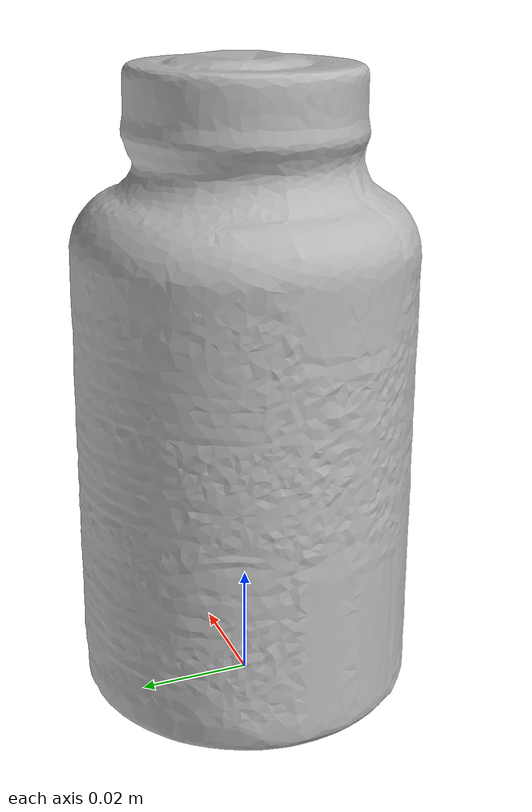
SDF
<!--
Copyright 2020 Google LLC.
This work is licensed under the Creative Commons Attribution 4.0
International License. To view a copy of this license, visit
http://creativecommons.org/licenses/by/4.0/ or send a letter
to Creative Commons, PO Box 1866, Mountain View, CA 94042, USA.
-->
<?xml version="1.0" ?>
<sdf version="1.6">
  <model name="Twinlab_Nitric_Fuel">
    <link name="link_0">
      <visual name="visual">
        <geometry>
          <mesh>
            <uri>model://pill_bottle/meshes/model.obj</uri>
          </mesh>
        </geometry>
      </visual>
      <collision name="collision_0">
        <geometry>
          <mesh>
            <uri>model://pill_bottle/meshes/model.obj</uri>
          </mesh>
        </geometry>
      </collision>
    </link>
  </model>
</sdf>
